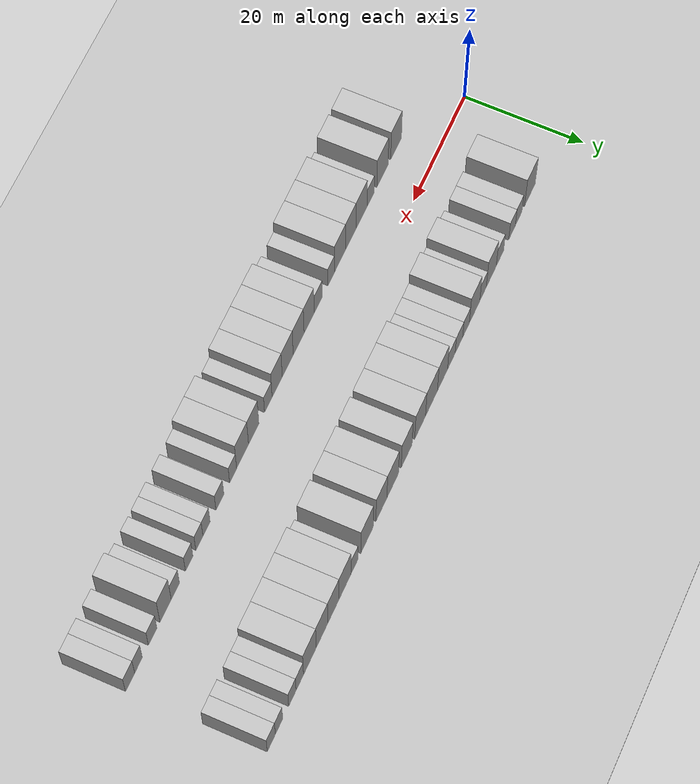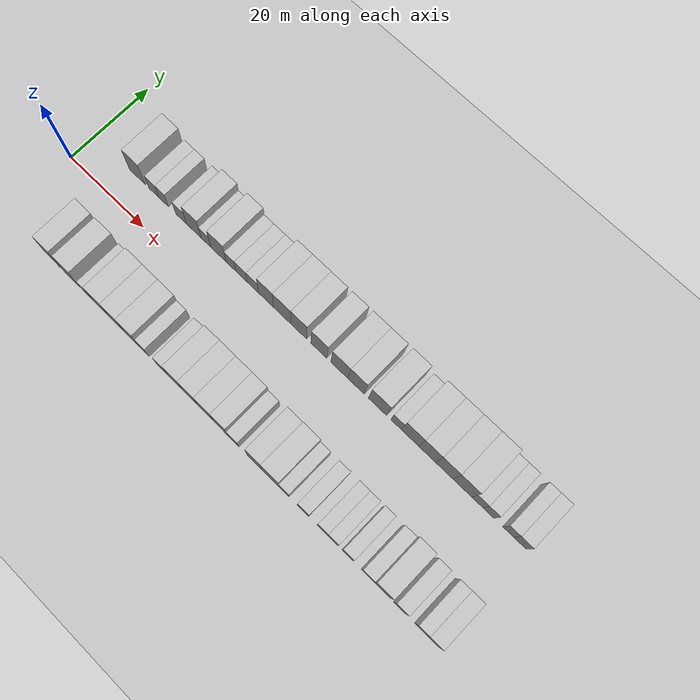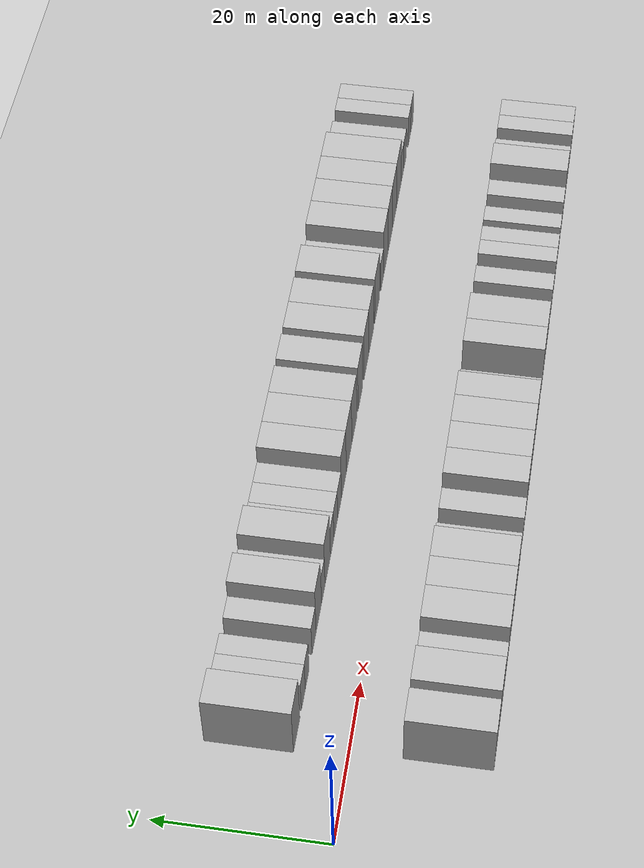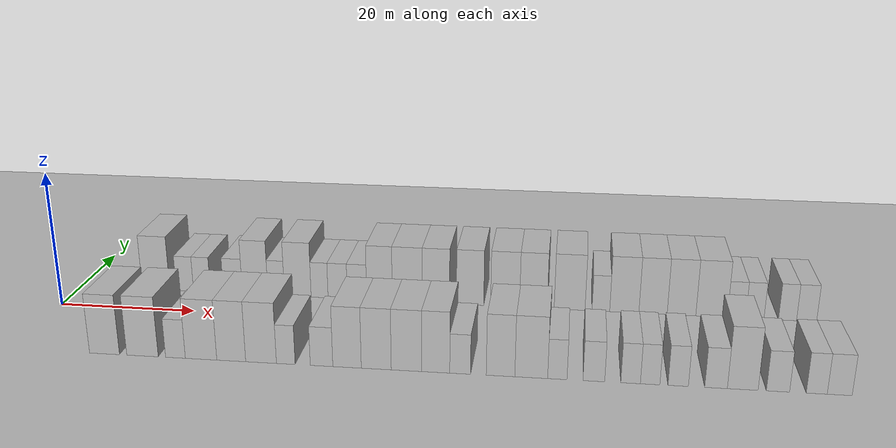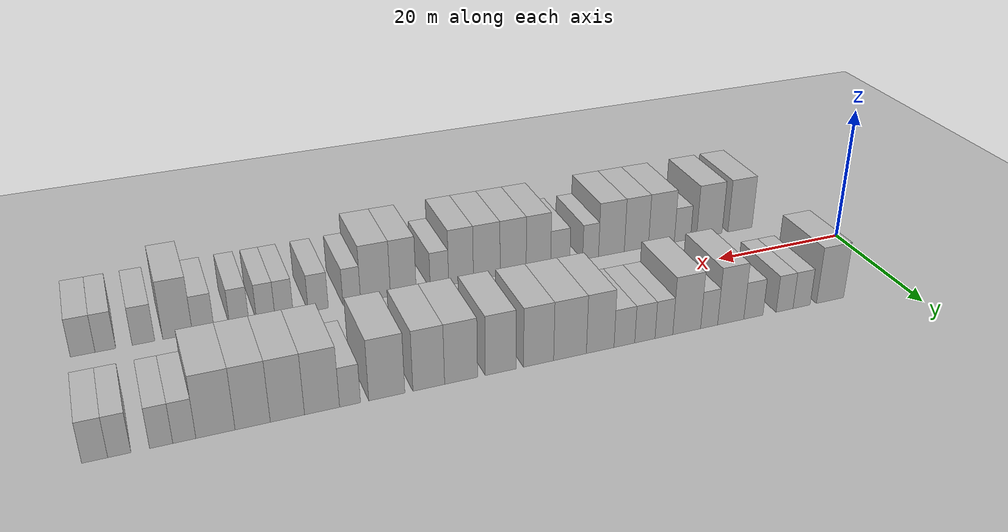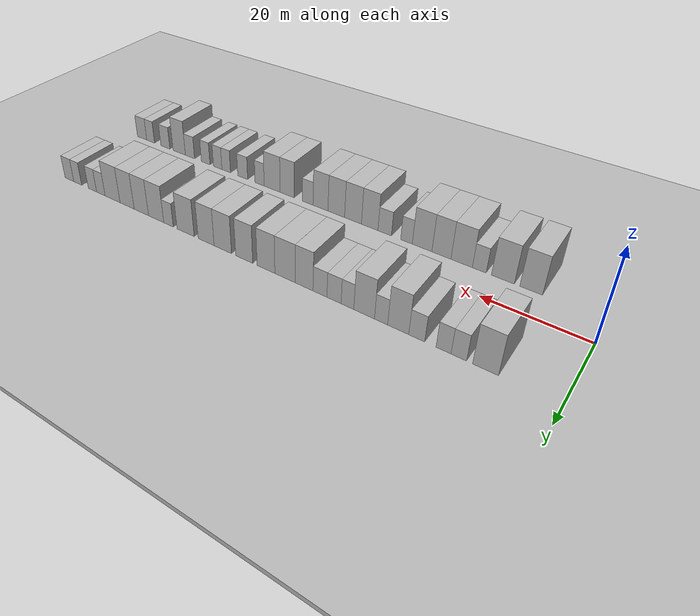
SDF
<sdf version="1.6">
 <world name="default">
  <include><name>ground_plane_1</name><uri>model://HANNAS_ground_plane</uri></include>
  <include>
   <name>ground_plane_2</name>
   <uri>model://HANNAS_ground_plane</uri>
   <pose>100 0 0  0 0 0</pose>
  </include>
  <model name="building_1">
   <static>1</static>
   <pose>12.1449 11.0000 0 0.000000 0.000000 1.570796</pose>
   <link name="link">
    <pose>0 0 4.50 0 0 0</pose>
    <collision name="collision"><geometry><box><size>10.0000 4.2898 9.0000</size></box></geometry></collision>
    <visual name="visual">
     <cast_shadows>0</cast_shadows>
     <geometry><box><size>10.0000 4.2898 9.0000</size></box></geometry>
     <material>
      <script>
       <uri>model://HANNAS_wall/materials/scripts</uri>
       <uri>model://HANNAS_wall/materials/textures</uri>
       <name>vrc/HANNAS_wall</name>
      </script>
     </material>
    </visual>
   </link>
  </model>
  <model name="building_2">
   <static>1</static>
   <pose>16.6229 11.0000 0 0.000000 0.000000 1.570796</pose>
   <link name="link">
    <pose>0 0 3.00 0 0 0</pose>
    <collision name="collision"><geometry><box><size>10.0000 2.6661 6.0000</size></box></geometry></collision>
    <visual name="visual">
     <cast_shadows>0</cast_shadows>
     <geometry><box><size>10.0000 2.6661 6.0000</size></box></geometry>
     <material>
      <script>
       <uri>model://HANNAS_wall/materials/scripts</uri>
       <uri>model://HANNAS_wall/materials/textures</uri>
       <name>vrc/HANNAS_wall</name>
      </script>
     </material>
    </visual>
   </link>
  </model>
  <model name="building_3">
   <static>1</static>
   <pose>19.2635 11.0000 0 0.000000 0.000000 1.570796</pose>
   <link name="link">
    <pose>0 0 3.00 0 0 0</pose>
    <collision name="collision"><geometry><box><size>10.0000 2.6152 6.0000</size></box></geometry></collision>
    <visual name="visual">
     <cast_shadows>0</cast_shadows>
     <geometry><box><size>10.0000 2.6152 6.0000</size></box></geometry>
     <material>
      <script>
       <uri>model://HANNAS_wall/materials/scripts</uri>
       <uri>model://HANNAS_wall/materials/textures</uri>
       <name>vrc/HANNAS_wall</name>
      </script>
     </material>
    </visual>
   </link>
  </model>
  <model name="building_4">
   <static>1</static>
   <pose>24.0243 11.0000 0 0.000000 0.000000 1.570796</pose>
   <link name="link">
    <pose>0 0 3.00 0 0 0</pose>
    <collision name="collision"><geometry><box><size>10.0000 2.9063 6.0000</size></box></geometry></collision>
    <visual name="visual">
     <cast_shadows>0</cast_shadows>
     <geometry><box><size>10.0000 2.9063 6.0000</size></box></geometry>
     <material>
      <script>
       <uri>model://HANNAS_wall/materials/scripts</uri>
       <uri>model://HANNAS_wall/materials/textures</uri>
       <name>vrc/HANNAS_wall</name>
      </script>
     </material>
    </visual>
   </link>
  </model>
  <model name="building_5">
   <static>1</static>
   <pose>27.4322 11.0000 0 0.000000 0.000000 1.570796</pose>
   <link name="link">
    <pose>0 0 4.50 0 0 0</pose>
    <collision name="collision"><geometry><box><size>10.0000 3.9095 9.0000</size></box></geometry></collision>
    <visual name="visual">
     <cast_shadows>0</cast_shadows>
     <geometry><box><size>10.0000 3.9095 9.0000</size></box></geometry>
     <material>
      <script>
       <uri>model://HANNAS_wall/materials/scripts</uri>
       <uri>model://HANNAS_wall/materials/textures</uri>
       <name>vrc/HANNAS_wall</name>
      </script>
     </material>
    </visual>
   </link>
  </model>
  <model name="building_6">
   <static>1</static>
   <pose>30.6412 11.0000 0 0.000000 0.000000 1.570796</pose>
   <link name="link">
    <pose>0 0 3.00 0 0 0</pose>
    <collision name="collision"><geometry><box><size>10.0000 2.5084 6.0000</size></box></geometry></collision>
    <visual name="visual">
     <cast_shadows>0</cast_shadows>
     <geometry><box><size>10.0000 2.5084 6.0000</size></box></geometry>
     <material>
      <script>
       <uri>model://HANNAS_wall/materials/scripts</uri>
       <uri>model://HANNAS_wall/materials/textures</uri>
       <name>vrc/HANNAS_wall</name>
      </script>
     </material>
    </visual>
   </link>
  </model>
  <model name="building_7">
   <static>1</static>
   <pose>33.9162 11.0000 0 0.000000 0.000000 1.570796</pose>
   <link name="link">
    <pose>0 0 4.50 0 0 0</pose>
    <collision name="collision"><geometry><box><size>10.0000 4.0416 9.0000</size></box></geometry></collision>
    <visual name="visual">
     <cast_shadows>0</cast_shadows>
     <geometry><box><size>10.0000 4.0416 9.0000</size></box></geometry>
     <material>
      <script>
       <uri>model://HANNAS_wall/materials/scripts</uri>
       <uri>model://HANNAS_wall/materials/textures</uri>
       <name>vrc/HANNAS_wall</name>
      </script>
     </material>
    </visual>
   </link>
  </model>
  <model name="building_8">
   <static>1</static>
   <pose>37.2105 11.0000 0 0.000000 0.000000 1.570796</pose>
   <link name="link">
    <pose>0 0 3.00 0 0 0</pose>
    <collision name="collision"><geometry><box><size>10.0000 2.5469 6.0000</size></box></geometry></collision>
    <visual name="visual">
     <cast_shadows>0</cast_shadows>
     <geometry><box><size>10.0000 2.5469 6.0000</size></box></geometry>
     <material>
      <script>
       <uri>model://HANNAS_wall/materials/scripts</uri>
       <uri>model://HANNAS_wall/materials/textures</uri>
       <name>vrc/HANNAS_wall</name>
      </script>
     </material>
    </visual>
   </link>
  </model>
  <model name="building_9">
   <static>1</static>
   <pose>39.9232 11.0000 0 0.000000 0.000000 1.570796</pose>
   <link name="link">
    <pose>0 0 3.00 0 0 0</pose>
    <collision name="collision"><geometry><box><size>10.0000 2.8787 6.0000</size></box></geometry></collision>
    <visual name="visual">
     <cast_shadows>0</cast_shadows>
     <geometry><box><size>10.0000 2.8787 6.0000</size></box></geometry>
     <material>
      <script>
       <uri>model://HANNAS_wall/materials/scripts</uri>
       <uri>model://HANNAS_wall/materials/textures</uri>
       <name>vrc/HANNAS_wall</name>
      </script>
     </material>
    </visual>
   </link>
  </model>
  <model name="building_10">
   <static>1</static>
   <pose>42.8151 11.0000 0 0.000000 0.000000 1.570796</pose>
   <link name="link">
    <pose>0 0 3.00 0 0 0</pose>
    <collision name="collision"><geometry><box><size>10.0000 2.9050 6.0000</size></box></geometry></collision>
    <visual name="visual">
     <cast_shadows>0</cast_shadows>
     <geometry><box><size>10.0000 2.9050 6.0000</size></box></geometry>
     <material>
      <script>
       <uri>model://HANNAS_wall/materials/scripts</uri>
       <uri>model://HANNAS_wall/materials/textures</uri>
       <name>vrc/HANNAS_wall</name>
      </script>
     </material>
    </visual>
   </link>
  </model>
  <model name="building_11">
   <static>1</static>
   <pose>46.1781 11.0000 0 0.000000 0.000000 1.570796</pose>
   <link name="link">
    <pose>0 0 4.50 0 0 0</pose>
    <collision name="collision"><geometry><box><size>10.0000 3.8211 9.0000</size></box></geometry></collision>
    <visual name="visual">
     <cast_shadows>0</cast_shadows>
     <geometry><box><size>10.0000 3.8211 9.0000</size></box></geometry>
     <material>
      <script>
       <uri>model://HANNAS_wall/materials/scripts</uri>
       <uri>model://HANNAS_wall/materials/textures</uri>
       <name>vrc/HANNAS_wall</name>
      </script>
     </material>
    </visual>
   </link>
  </model>
  <model name="building_12">
   <static>1</static>
   <pose>50.3115 11.0000 0 0.000000 0.000000 1.570796</pose>
   <link name="link">
    <pose>0 0 4.50 0 0 0</pose>
    <collision name="collision"><geometry><box><size>10.0000 4.4456 9.0000</size></box></geometry></collision>
    <visual name="visual">
     <cast_shadows>0</cast_shadows>
     <geometry><box><size>10.0000 4.4456 9.0000</size></box></geometry>
     <material>
      <script>
       <uri>model://HANNAS_wall/materials/scripts</uri>
       <uri>model://HANNAS_wall/materials/textures</uri>
       <name>vrc/HANNAS_wall</name>
      </script>
     </material>
    </visual>
   </link>
  </model>
  <model name="building_13">
   <static>1</static>
   <pose>54.5443 11.0000 0 0.000000 0.000000 1.570796</pose>
   <link name="link">
    <pose>0 0 4.50 0 0 0</pose>
    <collision name="collision"><geometry><box><size>10.0000 4.0202 9.0000</size></box></geometry></collision>
    <visual name="visual">
     <cast_shadows>0</cast_shadows>
     <geometry><box><size>10.0000 4.0202 9.0000</size></box></geometry>
     <material>
      <script>
       <uri>model://HANNAS_wall/materials/scripts</uri>
       <uri>model://HANNAS_wall/materials/textures</uri>
       <name>vrc/HANNAS_wall</name>
      </script>
     </material>
    </visual>
   </link>
  </model>
  <model name="building_14">
   <static>1</static>
   <pose>59.5513 11.0000 0 0.000000 0.000000 1.570796</pose>
   <link name="link">
    <pose>0 0 4.50 0 0 0</pose>
    <collision name="collision"><geometry><box><size>10.0000 3.9937 9.0000</size></box></geometry></collision>
    <visual name="visual">
     <cast_shadows>0</cast_shadows>
     <geometry><box><size>10.0000 3.9937 9.0000</size></box></geometry>
     <material>
      <script>
       <uri>model://HANNAS_wall/materials/scripts</uri>
       <uri>model://HANNAS_wall/materials/textures</uri>
       <name>vrc/HANNAS_wall</name>
      </script>
     </material>
    </visual>
   </link>
  </model>
  <model name="building_15">
   <static>1</static>
   <pose>64.6542 11.0000 0 0.000000 0.000000 1.570796</pose>
   <link name="link">
    <pose>0 0 4.50 0 0 0</pose>
    <collision name="collision"><geometry><box><size>10.0000 4.2122 9.0000</size></box></geometry></collision>
    <visual name="visual">
     <cast_shadows>0</cast_shadows>
     <geometry><box><size>10.0000 4.2122 9.0000</size></box></geometry>
     <material>
      <script>
       <uri>model://HANNAS_wall/materials/scripts</uri>
       <uri>model://HANNAS_wall/materials/textures</uri>
       <name>vrc/HANNAS_wall</name>
      </script>
     </material>
    </visual>
   </link>
  </model>
  <model name="building_16">
   <static>1</static>
   <pose>68.7493 11.0000 0 0.000000 0.000000 1.570796</pose>
   <link name="link">
    <pose>0 0 4.50 0 0 0</pose>
    <collision name="collision"><geometry><box><size>10.0000 3.9779 9.0000</size></box></geometry></collision>
    <visual name="visual">
     <cast_shadows>0</cast_shadows>
     <geometry><box><size>10.0000 3.9779 9.0000</size></box></geometry>
     <material>
      <script>
       <uri>model://HANNAS_wall/materials/scripts</uri>
       <uri>model://HANNAS_wall/materials/textures</uri>
       <name>vrc/HANNAS_wall</name>
      </script>
     </material>
    </visual>
   </link>
  </model>
  <model name="building_17">
   <static>1</static>
   <pose>73.9517 11.0000 0 0.000000 0.000000 1.570796</pose>
   <link name="link">
    <pose>0 0 4.50 0 0 0</pose>
    <collision name="collision"><geometry><box><size>10.0000 4.4268 9.0000</size></box></geometry></collision>
    <visual name="visual">
     <cast_shadows>0</cast_shadows>
     <geometry><box><size>10.0000 4.4268 9.0000</size></box></geometry>
     <material>
      <script>
       <uri>model://HANNAS_wall/materials/scripts</uri>
       <uri>model://HANNAS_wall/materials/textures</uri>
       <name>vrc/HANNAS_wall</name>
      </script>
     </material>
    </visual>
   </link>
  </model>
  <model name="building_18">
   <static>1</static>
   <pose>78.4234 11.0000 0 0.000000 0.000000 1.570796</pose>
   <link name="link">
    <pose>0 0 3.00 0 0 0</pose>
    <collision name="collision"><geometry><box><size>10.0000 2.5167 6.0000</size></box></geometry></collision>
    <visual name="visual">
     <cast_shadows>0</cast_shadows>
     <geometry><box><size>10.0000 2.5167 6.0000</size></box></geometry>
     <material>
      <script>
       <uri>model://HANNAS_wall/materials/scripts</uri>
       <uri>model://HANNAS_wall/materials/textures</uri>
       <name>vrc/HANNAS_wall</name>
      </script>
     </material>
    </visual>
   </link>
  </model>
  <model name="building_19">
   <static>1</static>
   <pose>81.7531 11.0000 0 0.000000 0.000000 1.570796</pose>
   <link name="link">
    <pose>0 0 4.50 0 0 0</pose>
    <collision name="collision"><geometry><box><size>10.0000 4.1428 9.0000</size></box></geometry></collision>
    <visual name="visual">
     <cast_shadows>0</cast_shadows>
     <geometry><box><size>10.0000 4.1428 9.0000</size></box></geometry>
     <material>
      <script>
       <uri>model://HANNAS_wall/materials/scripts</uri>
       <uri>model://HANNAS_wall/materials/textures</uri>
       <name>vrc/HANNAS_wall</name>
      </script>
     </material>
    </visual>
   </link>
  </model>
  <model name="building_20">
   <static>1</static>
   <pose>85.8169 11.0000 0 0.000000 0.000000 1.570796</pose>
   <link name="link">
    <pose>0 0 4.50 0 0 0</pose>
    <collision name="collision"><geometry><box><size>10.0000 3.9847 9.0000</size></box></geometry></collision>
    <visual name="visual">
     <cast_shadows>0</cast_shadows>
     <geometry><box><size>10.0000 3.9847 9.0000</size></box></geometry>
     <material>
      <script>
       <uri>model://HANNAS_wall/materials/scripts</uri>
       <uri>model://HANNAS_wall/materials/textures</uri>
       <name>vrc/HANNAS_wall</name>
      </script>
     </material>
    </visual>
   </link>
  </model>
  <model name="building_21">
   <static>1</static>
   <pose>89.8187 11.0000 0 0.000000 0.000000 1.570796</pose>
   <link name="link">
    <pose>0 0 4.50 0 0 0</pose>
    <collision name="collision"><geometry><box><size>10.0000 4.0189 9.0000</size></box></geometry></collision>
    <visual name="visual">
     <cast_shadows>0</cast_shadows>
     <geometry><box><size>10.0000 4.0189 9.0000</size></box></geometry>
     <material>
      <script>
       <uri>model://HANNAS_wall/materials/scripts</uri>
       <uri>model://HANNAS_wall/materials/textures</uri>
       <name>vrc/HANNAS_wall</name>
      </script>
     </material>
    </visual>
   </link>
  </model>
  <model name="building_22">
   <static>1</static>
   <pose>94.0223 11.0000 0 0.000000 0.000000 1.570796</pose>
   <link name="link">
    <pose>0 0 4.50 0 0 0</pose>
    <collision name="collision"><geometry><box><size>10.0000 4.3884 9.0000</size></box></geometry></collision>
    <visual name="visual">
     <cast_shadows>0</cast_shadows>
     <geometry><box><size>10.0000 4.3884 9.0000</size></box></geometry>
     <material>
      <script>
       <uri>model://HANNAS_wall/materials/scripts</uri>
       <uri>model://HANNAS_wall/materials/textures</uri>
       <name>vrc/HANNAS_wall</name>
      </script>
     </material>
    </visual>
   </link>
  </model>
  <model name="building_23">
   <static>1</static>
   <pose>97.4901 11.0000 0 0.000000 0.000000 1.570796</pose>
   <link name="link">
    <pose>0 0 3.00 0 0 0</pose>
    <collision name="collision"><geometry><box><size>10.0000 2.5473 6.0000</size></box></geometry></collision>
    <visual name="visual">
     <cast_shadows>0</cast_shadows>
     <geometry><box><size>10.0000 2.5473 6.0000</size></box></geometry>
     <material>
      <script>
       <uri>model://HANNAS_wall/materials/scripts</uri>
       <uri>model://HANNAS_wall/materials/textures</uri>
       <name>vrc/HANNAS_wall</name>
      </script>
     </material>
    </visual>
   </link>
  </model>
  <model name="building_24">
   <static>1</static>
   <pose>100.0293 11.0000 0 0.000000 0.000000 1.570796</pose>
   <link name="link">
    <pose>0 0 3.00 0 0 0</pose>
    <collision name="collision"><geometry><box><size>10.0000 2.5309 6.0000</size></box></geometry></collision>
    <visual name="visual">
     <cast_shadows>0</cast_shadows>
     <geometry><box><size>10.0000 2.5309 6.0000</size></box></geometry>
     <material>
      <script>
       <uri>model://HANNAS_wall/materials/scripts</uri>
       <uri>model://HANNAS_wall/materials/textures</uri>
       <name>vrc/HANNAS_wall</name>
      </script>
     </material>
    </visual>
   </link>
  </model>
  <model name="building_25">
   <static>1</static>
   <pose>104.5352 11.0000 0 0.000000 0.000000 1.570796</pose>
   <link name="link">
    <pose>0 0 3.00 0 0 0</pose>
    <collision name="collision"><geometry><box><size>10.0000 2.4810 6.0000</size></box></geometry></collision>
    <visual name="visual">
     <cast_shadows>0</cast_shadows>
     <geometry><box><size>10.0000 2.4810 6.0000</size></box></geometry>
     <material>
      <script>
       <uri>model://HANNAS_wall/materials/scripts</uri>
       <uri>model://HANNAS_wall/materials/textures</uri>
       <name>vrc/HANNAS_wall</name>
      </script>
     </material>
    </visual>
   </link>
  </model>
  <model name="building_26">
   <static>1</static>
   <pose>107.1506 11.0000 0 0.000000 0.000000 1.570796</pose>
   <link name="link">
    <pose>0 0 3.00 0 0 0</pose>
    <collision name="collision"><geometry><box><size>10.0000 2.7499 6.0000</size></box></geometry></collision>
    <visual name="visual">
     <cast_shadows>0</cast_shadows>
     <geometry><box><size>10.0000 2.7499 6.0000</size></box></geometry>
     <material>
      <script>
       <uri>model://HANNAS_wall/materials/scripts</uri>
       <uri>model://HANNAS_wall/materials/textures</uri>
       <name>vrc/HANNAS_wall</name>
      </script>
     </material>
    </visual>
   </link>
  </model>
  <model name="building_53">
   <static>1</static>
   <pose>13.0628 -11.0000 0 0.000000 0.000000 1.570796</pose>
   <link name="link">
    <pose>0 0 4.50 0 0 0</pose>
    <collision name="collision"><geometry><box><size>10.0000 4.1257 9.0000</size></box></geometry></collision>
    <visual name="visual">
     <cast_shadows>0</cast_shadows>
     <geometry><box><size>10.0000 4.1257 9.0000</size></box></geometry>
     <material>
      <script>
       <uri>model://HANNAS_wall/materials/scripts</uri>
       <uri>model://HANNAS_wall/materials/textures</uri>
       <name>vrc/HANNAS_wall</name>
      </script>
     </material>
    </visual>
   </link>
  </model>
  <model name="building_54">
   <static>1</static>
   <pose>18.2772 -11.0000 0 0.000000 0.000000 1.570796</pose>
   <link name="link">
    <pose>0 0 4.50 0 0 0</pose>
    <collision name="collision"><geometry><box><size>10.0000 4.3030 9.0000</size></box></geometry></collision>
    <visual name="visual">
     <cast_shadows>0</cast_shadows>
     <geometry><box><size>10.0000 4.3030 9.0000</size></box></geometry>
     <material>
      <script>
       <uri>model://HANNAS_wall/materials/scripts</uri>
       <uri>model://HANNAS_wall/materials/textures</uri>
       <name>vrc/HANNAS_wall</name>
      </script>
     </material>
    </visual>
   </link>
  </model>
  <model name="building_55">
   <static>1</static>
   <pose>22.7691 -11.0000 0 0.000000 0.000000 1.570796</pose>
   <link name="link">
    <pose>0 0 3.00 0 0 0</pose>
    <collision name="collision"><geometry><box><size>10.0000 2.6807 6.0000</size></box></geometry></collision>
    <visual name="visual">
     <cast_shadows>0</cast_shadows>
     <geometry><box><size>10.0000 2.6807 6.0000</size></box></geometry>
     <material>
      <script>
       <uri>model://HANNAS_wall/materials/scripts</uri>
       <uri>model://HANNAS_wall/materials/textures</uri>
       <name>vrc/HANNAS_wall</name>
      </script>
     </material>
    </visual>
   </link>
  </model>
  <model name="building_56">
   <static>1</static>
   <pose>26.2354 -11.0000 0 0.000000 0.000000 1.570796</pose>
   <link name="link">
    <pose>0 0 4.50 0 0 0</pose>
    <collision name="collision"><geometry><box><size>10.0000 4.2519 9.0000</size></box></geometry></collision>
    <visual name="visual">
     <cast_shadows>0</cast_shadows>
     <geometry><box><size>10.0000 4.2519 9.0000</size></box></geometry>
     <material>
      <script>
       <uri>model://HANNAS_wall/materials/scripts</uri>
       <uri>model://HANNAS_wall/materials/textures</uri>
       <name>vrc/HANNAS_wall</name>
      </script>
     </material>
    </visual>
   </link>
  </model>
  <model name="building_57">
   <static>1</static>
   <pose>30.3031 -11.0000 0 0.000000 0.000000 1.570796</pose>
   <link name="link">
    <pose>0 0 4.50 0 0 0</pose>
    <collision name="collision"><geometry><box><size>10.0000 3.8834 9.0000</size></box></geometry></collision>
    <visual name="visual">
     <cast_shadows>0</cast_shadows>
     <geometry><box><size>10.0000 3.8834 9.0000</size></box></geometry>
     <material>
      <script>
       <uri>model://HANNAS_wall/materials/scripts</uri>
       <uri>model://HANNAS_wall/materials/textures</uri>
       <name>vrc/HANNAS_wall</name>
      </script>
     </material>
    </visual>
   </link>
  </model>
  <model name="building_58">
   <static>1</static>
   <pose>34.2972 -11.0000 0 0.000000 0.000000 1.570796</pose>
   <link name="link">
    <pose>0 0 4.50 0 0 0</pose>
    <collision name="collision"><geometry><box><size>10.0000 4.1049 9.0000</size></box></geometry></collision>
    <visual name="visual">
     <cast_shadows>0</cast_shadows>
     <geometry><box><size>10.0000 4.1049 9.0000</size></box></geometry>
     <material>
      <script>
       <uri>model://HANNAS_wall/materials/scripts</uri>
       <uri>model://HANNAS_wall/materials/textures</uri>
       <name>vrc/HANNAS_wall</name>
      </script>
     </material>
    </visual>
   </link>
  </model>
  <model name="building_59">
   <static>1</static>
   <pose>37.5935 -11.0000 0 0.000000 0.000000 1.570796</pose>
   <link name="link">
    <pose>0 0 3.00 0 0 0</pose>
    <collision name="collision"><geometry><box><size>10.0000 2.4879 6.0000</size></box></geometry></collision>
    <visual name="visual">
     <cast_shadows>0</cast_shadows>
     <geometry><box><size>10.0000 2.4879 6.0000</size></box></geometry>
     <material>
      <script>
       <uri>model://HANNAS_wall/materials/scripts</uri>
       <uri>model://HANNAS_wall/materials/textures</uri>
       <name>vrc/HANNAS_wall</name>
      </script>
     </material>
    </visual>
   </link>
  </model>
  <model name="building_60">
   <static>1</static>
   <pose>42.3228 -11.0000 0 0.000000 0.000000 1.570796</pose>
   <link name="link">
    <pose>0 0 3.00 0 0 0</pose>
    <collision name="collision"><geometry><box><size>10.0000 2.9707 6.0000</size></box></geometry></collision>
    <visual name="visual">
     <cast_shadows>0</cast_shadows>
     <geometry><box><size>10.0000 2.9707 6.0000</size></box></geometry>
     <material>
      <script>
       <uri>model://HANNAS_wall/materials/scripts</uri>
       <uri>model://HANNAS_wall/materials/textures</uri>
       <name>vrc/HANNAS_wall</name>
      </script>
     </material>
    </visual>
   </link>
  </model>
  <model name="building_61">
   <static>1</static>
   <pose>45.6756 -11.0000 0 0.000000 0.000000 1.570796</pose>
   <link name="link">
    <pose>0 0 4.50 0 0 0</pose>
    <collision name="collision"><geometry><box><size>10.0000 3.7348 9.0000</size></box></geometry></collision>
    <visual name="visual">
     <cast_shadows>0</cast_shadows>
     <geometry><box><size>10.0000 3.7348 9.0000</size></box></geometry>
     <material>
      <script>
       <uri>model://HANNAS_wall/materials/scripts</uri>
       <uri>model://HANNAS_wall/materials/textures</uri>
       <name>vrc/HANNAS_wall</name>
      </script>
     </material>
    </visual>
   </link>
  </model>
  <model name="building_62">
   <static>1</static>
   <pose>49.4965 -11.0000 0 0.000000 0.000000 1.570796</pose>
   <link name="link">
    <pose>0 0 4.50 0 0 0</pose>
    <collision name="collision"><geometry><box><size>10.0000 3.9071 9.0000</size></box></geometry></collision>
    <visual name="visual">
     <cast_shadows>0</cast_shadows>
     <geometry><box><size>10.0000 3.9071 9.0000</size></box></geometry>
     <material>
      <script>
       <uri>model://HANNAS_wall/materials/scripts</uri>
       <uri>model://HANNAS_wall/materials/textures</uri>
       <name>vrc/HANNAS_wall</name>
      </script>
     </material>
    </visual>
   </link>
  </model>
  <model name="building_63">
   <static>1</static>
   <pose>53.4239 -11.0000 0 0.000000 0.000000 1.570796</pose>
   <link name="link">
    <pose>0 0 4.50 0 0 0</pose>
    <collision name="collision"><geometry><box><size>10.0000 3.9476 9.0000</size></box></geometry></collision>
    <visual name="visual">
     <cast_shadows>0</cast_shadows>
     <geometry><box><size>10.0000 3.9476 9.0000</size></box></geometry>
     <material>
      <script>
       <uri>model://HANNAS_wall/materials/scripts</uri>
       <uri>model://HANNAS_wall/materials/textures</uri>
       <name>vrc/HANNAS_wall</name>
      </script>
     </material>
    </visual>
   </link>
  </model>
  <model name="building_64">
   <static>1</static>
   <pose>57.2049 -11.0000 0 0.000000 0.000000 1.570796</pose>
   <link name="link">
    <pose>0 0 4.50 0 0 0</pose>
    <collision name="collision"><geometry><box><size>10.0000 3.6144 9.0000</size></box></geometry></collision>
    <visual name="visual">
     <cast_shadows>0</cast_shadows>
     <geometry><box><size>10.0000 3.6144 9.0000</size></box></geometry>
     <material>
      <script>
       <uri>model://HANNAS_wall/materials/scripts</uri>
       <uri>model://HANNAS_wall/materials/textures</uri>
       <name>vrc/HANNAS_wall</name>
      </script>
     </material>
    </visual>
   </link>
  </model>
  <model name="building_65">
   <static>1</static>
   <pose>60.3456 -11.0000 0 0.000000 0.000000 1.570796</pose>
   <link name="link">
    <pose>0 0 3.00 0 0 0</pose>
    <collision name="collision"><geometry><box><size>10.0000 2.6671 6.0000</size></box></geometry></collision>
    <visual name="visual">
     <cast_shadows>0</cast_shadows>
     <geometry><box><size>10.0000 2.6671 6.0000</size></box></geometry>
     <material>
      <script>
       <uri>model://HANNAS_wall/materials/scripts</uri>
       <uri>model://HANNAS_wall/materials/textures</uri>
       <name>vrc/HANNAS_wall</name>
      </script>
     </material>
    </visual>
   </link>
  </model>
  <model name="building_66">
   <static>1</static>
   <pose>65.4968 -11.0000 0 0.000000 0.000000 1.570796</pose>
   <link name="link">
    <pose>0 0 4.50 0 0 0</pose>
    <collision name="collision"><geometry><box><size>10.0000 3.6353 9.0000</size></box></geometry></collision>
    <visual name="visual">
     <cast_shadows>0</cast_shadows>
     <geometry><box><size>10.0000 3.6353 9.0000</size></box></geometry>
     <material>
      <script>
       <uri>model://HANNAS_wall/materials/scripts</uri>
       <uri>model://HANNAS_wall/materials/textures</uri>
       <name>vrc/HANNAS_wall</name>
      </script>
     </material>
    </visual>
   </link>
  </model>
  <model name="building_67">
   <static>1</static>
   <pose>69.3894 -11.0000 0 0.000000 0.000000 1.570796</pose>
   <link name="link">
    <pose>0 0 4.50 0 0 0</pose>
    <collision name="collision"><geometry><box><size>10.0000 4.1499 9.0000</size></box></geometry></collision>
    <visual name="visual">
     <cast_shadows>0</cast_shadows>
     <geometry><box><size>10.0000 4.1499 9.0000</size></box></geometry>
     <material>
      <script>
       <uri>model://HANNAS_wall/materials/scripts</uri>
       <uri>model://HANNAS_wall/materials/textures</uri>
       <name>vrc/HANNAS_wall</name>
      </script>
     </material>
    </visual>
   </link>
  </model>
  <model name="building_68">
   <static>1</static>
   <pose>72.6811 -11.0000 0 0.000000 0.000000 1.570796</pose>
   <link name="link">
    <pose>0 0 3.00 0 0 0</pose>
    <collision name="collision"><geometry><box><size>10.0000 2.4334 6.0000</size></box></geometry></collision>
    <visual name="visual">
     <cast_shadows>0</cast_shadows>
     <geometry><box><size>10.0000 2.4334 6.0000</size></box></geometry>
     <material>
      <script>
       <uri>model://HANNAS_wall/materials/scripts</uri>
       <uri>model://HANNAS_wall/materials/textures</uri>
       <name>vrc/HANNAS_wall</name>
      </script>
     </material>
    </visual>
   </link>
  </model>
  <model name="building_69">
   <static>1</static>
   <pose>77.2539 -11.0000 0 0.000000 0.000000 1.570796</pose>
   <link name="link">
    <pose>0 0 3.00 0 0 0</pose>
    <collision name="collision"><geometry><box><size>10.0000 2.7123 6.0000</size></box></geometry></collision>
    <visual name="visual">
     <cast_shadows>0</cast_shadows>
     <geometry><box><size>10.0000 2.7123 6.0000</size></box></geometry>
     <material>
      <script>
       <uri>model://HANNAS_wall/materials/scripts</uri>
       <uri>model://HANNAS_wall/materials/textures</uri>
       <name>vrc/HANNAS_wall</name>
      </script>
     </material>
    </visual>
   </link>
  </model>
  <model name="building_70">
   <static>1</static>
   <pose>81.8220 -11.0000 0 0.000000 0.000000 1.570796</pose>
   <link name="link">
    <pose>0 0 3.00 0 0 0</pose>
    <collision name="collision"><geometry><box><size>10.0000 2.4238 6.0000</size></box></geometry></collision>
    <visual name="visual">
     <cast_shadows>0</cast_shadows>
     <geometry><box><size>10.0000 2.4238 6.0000</size></box></geometry>
     <material>
      <script>
       <uri>model://HANNAS_wall/materials/scripts</uri>
       <uri>model://HANNAS_wall/materials/textures</uri>
       <name>vrc/HANNAS_wall</name>
      </script>
     </material>
    </visual>
   </link>
  </model>
  <model name="building_71">
   <static>1</static>
   <pose>84.2395 -11.0000 0 0.000000 0.000000 1.570796</pose>
   <link name="link">
    <pose>0 0 3.00 0 0 0</pose>
    <collision name="collision"><geometry><box><size>10.0000 2.4113 6.0000</size></box></geometry></collision>
    <visual name="visual">
     <cast_shadows>0</cast_shadows>
     <geometry><box><size>10.0000 2.4113 6.0000</size></box></geometry>
     <material>
      <script>
       <uri>model://HANNAS_wall/materials/scripts</uri>
       <uri>model://HANNAS_wall/materials/textures</uri>
       <name>vrc/HANNAS_wall</name>
      </script>
     </material>
    </visual>
   </link>
  </model>
  <model name="building_72">
   <static>1</static>
   <pose>87.6946 -11.0000 0 0.000000 0.000000 1.570796</pose>
   <link name="link">
    <pose>0 0 3.00 0 0 0</pose>
    <collision name="collision"><geometry><box><size>10.0000 2.4989 6.0000</size></box></geometry></collision>
    <visual name="visual">
     <cast_shadows>0</cast_shadows>
     <geometry><box><size>10.0000 2.4989 6.0000</size></box></geometry>
     <material>
      <script>
       <uri>model://HANNAS_wall/materials/scripts</uri>
       <uri>model://HANNAS_wall/materials/textures</uri>
       <name>vrc/HANNAS_wall</name>
      </script>
     </material>
    </visual>
   </link>
  </model>
  <model name="building_73">
   <static>1</static>
   <pose>92.3211 -11.0000 0 0.000000 0.000000 1.570796</pose>
   <link name="link">
    <pose>0 0 3.00 0 0 0</pose>
    <collision name="collision"><geometry><box><size>10.0000 2.7540 6.0000</size></box></geometry></collision>
    <visual name="visual">
     <cast_shadows>0</cast_shadows>
     <geometry><box><size>10.0000 2.7540 6.0000</size></box></geometry>
     <material>
      <script>
       <uri>model://HANNAS_wall/materials/scripts</uri>
       <uri>model://HANNAS_wall/materials/textures</uri>
       <name>vrc/HANNAS_wall</name>
      </script>
     </material>
    </visual>
   </link>
  </model>
  <model name="building_74">
   <static>1</static>
   <pose>95.5631 -11.0000 0 0.000000 0.000000 1.570796</pose>
   <link name="link">
    <pose>0 0 4.50 0 0 0</pose>
    <collision name="collision"><geometry><box><size>10.0000 3.7300 9.0000</size></box></geometry></collision>
    <visual name="visual">
     <cast_shadows>0</cast_shadows>
     <geometry><box><size>10.0000 3.7300 9.0000</size></box></geometry>
     <material>
      <script>
       <uri>model://HANNAS_wall/materials/scripts</uri>
       <uri>model://HANNAS_wall/materials/textures</uri>
       <name>vrc/HANNAS_wall</name>
      </script>
     </material>
    </visual>
   </link>
  </model>
  <model name="building_75">
   <static>1</static>
   <pose>99.8254 -11.0000 0 0.000000 0.000000 1.570796</pose>
   <link name="link">
    <pose>0 0 3.00 0 0 0</pose>
    <collision name="collision"><geometry><box><size>10.0000 2.7945 6.0000</size></box></geometry></collision>
    <visual name="visual">
     <cast_shadows>0</cast_shadows>
     <geometry><box><size>10.0000 2.7945 6.0000</size></box></geometry>
     <material>
      <script>
       <uri>model://HANNAS_wall/materials/scripts</uri>
       <uri>model://HANNAS_wall/materials/textures</uri>
       <name>vrc/HANNAS_wall</name>
      </script>
     </material>
    </visual>
   </link>
  </model>
  <model name="building_76">
   <static>1</static>
   <pose>104.4739 -11.0000 0 0.000000 0.000000 1.570796</pose>
   <link name="link">
    <pose>0 0 3.00 0 0 0</pose>
    <collision name="collision"><geometry><box><size>10.0000 2.5026 6.0000</size></box></geometry></collision>
    <visual name="visual">
     <cast_shadows>0</cast_shadows>
     <geometry><box><size>10.0000 2.5026 6.0000</size></box></geometry>
     <material>
      <script>
       <uri>model://HANNAS_wall/materials/scripts</uri>
       <uri>model://HANNAS_wall/materials/textures</uri>
       <name>vrc/HANNAS_wall</name>
      </script>
     </material>
    </visual>
   </link>
  </model>
  <model name="building_77">
   <static>1</static>
   <pose>107.2092 -11.0000 0 0.000000 0.000000 1.570796</pose>
   <link name="link">
    <pose>0 0 3.00 0 0 0</pose>
    <collision name="collision"><geometry><box><size>10.0000 2.9679 6.0000</size></box></geometry></collision>
    <visual name="visual">
     <cast_shadows>0</cast_shadows>
     <geometry><box><size>10.0000 2.9679 6.0000</size></box></geometry>
     <material>
      <script>
       <uri>model://HANNAS_wall/materials/scripts</uri>
       <uri>model://HANNAS_wall/materials/textures</uri>
       <name>vrc/HANNAS_wall</name>
      </script>
     </material>
    </visual>
   </link>
  </model>
 </world>
</sdf>
